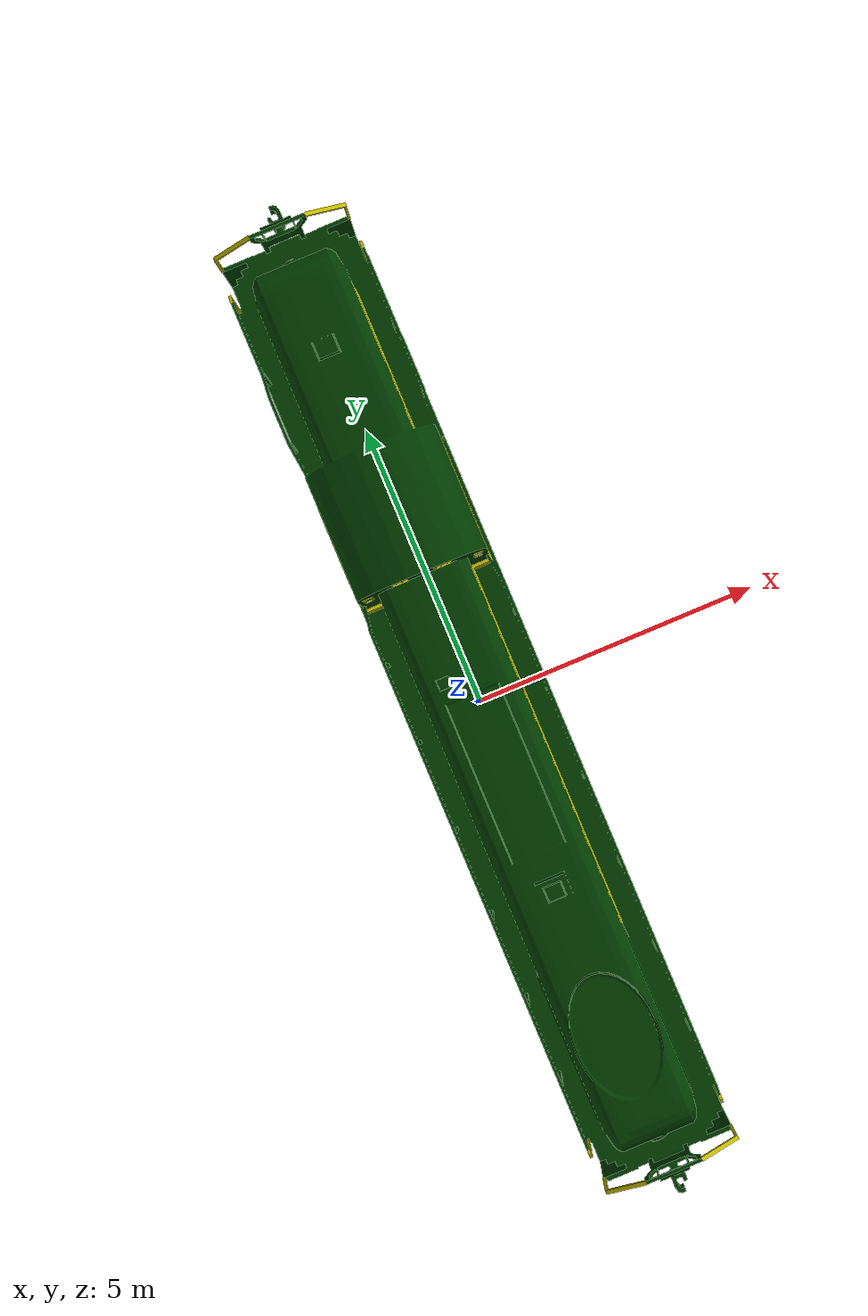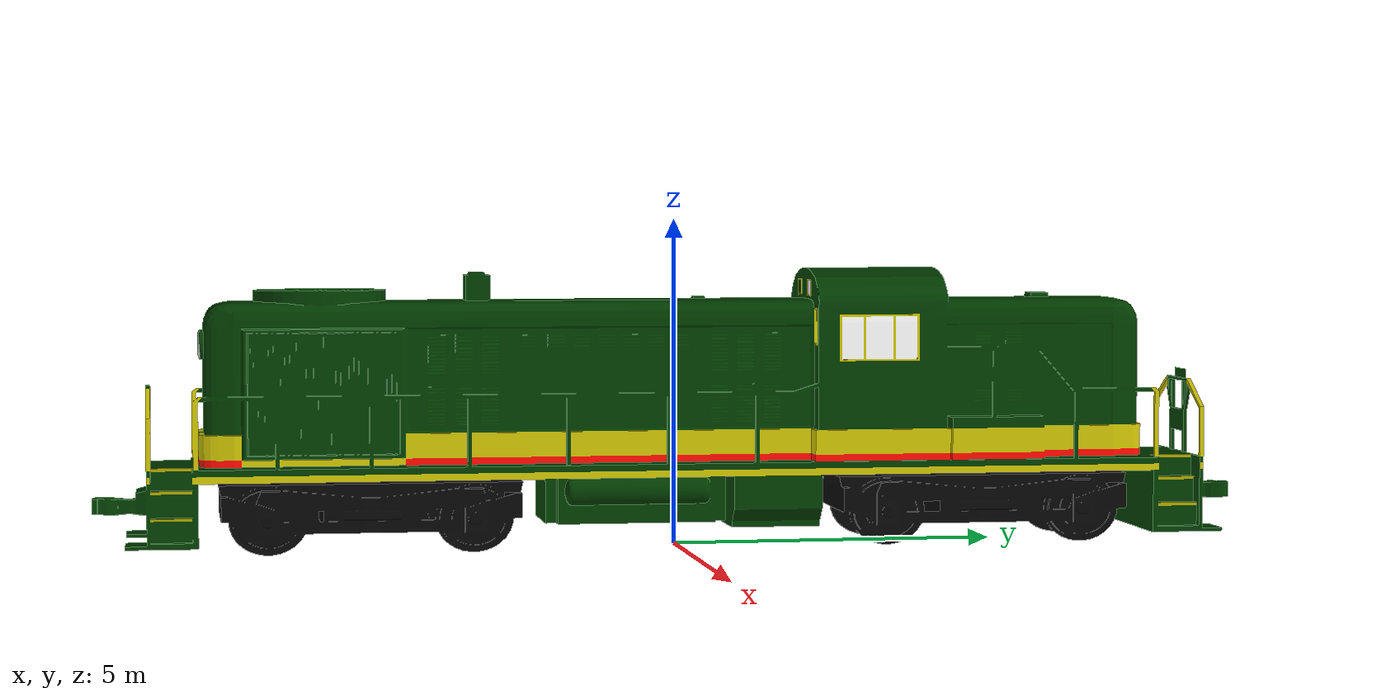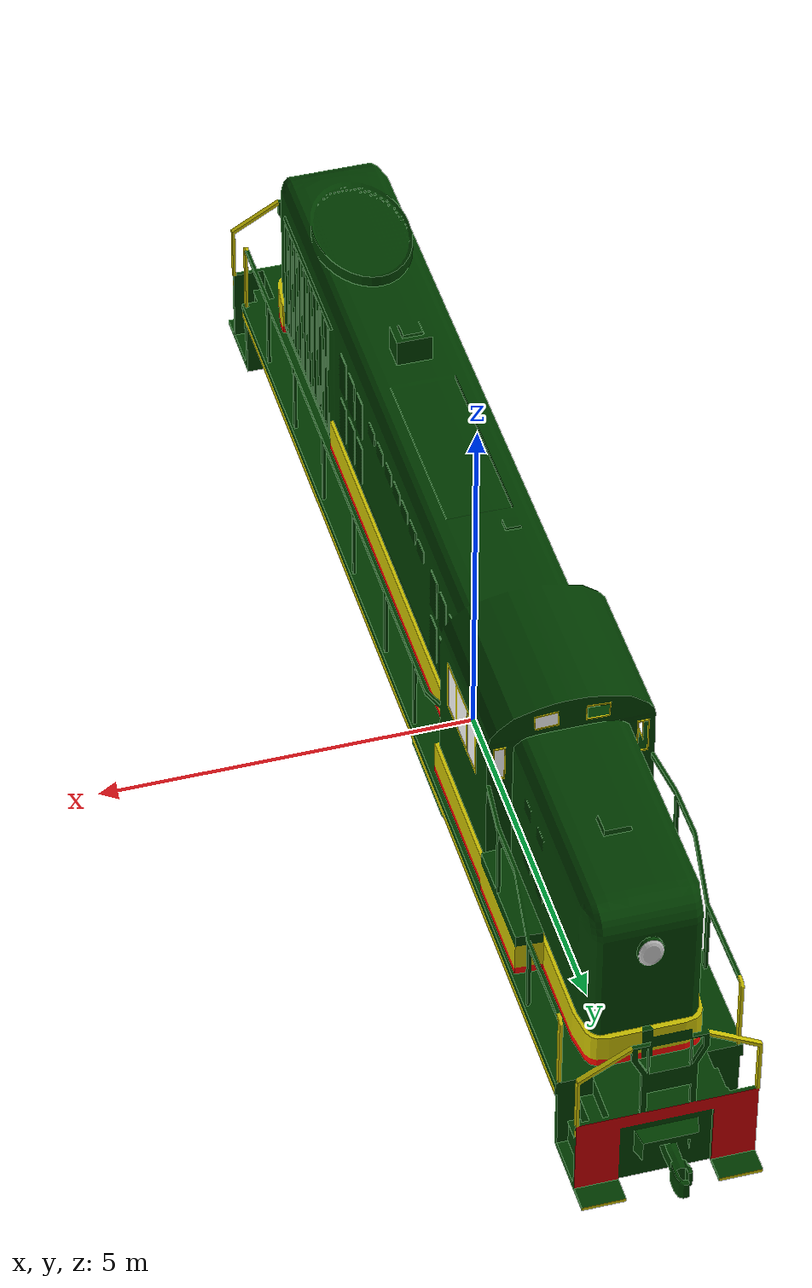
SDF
<?xml version="1.0" ?>
<sdf version="1.5">
  <model name="train_c">
    <static>true</static>
    <link name="train_c_link">
      <collision name="collision">
        <geometry>
          <mesh optimization="convex_hull">
            <uri>model://train_c/meshes/train_c.stl</uri>
          </mesh>
        </geometry>
      </collision>
      <visual name="visual">
        <geometry>
          <mesh>
            <uri>model://train_c/meshes/train_c.dae</uri>
          </mesh>
        </geometry>
      </visual>
    </link>
  </model>
</sdf>
